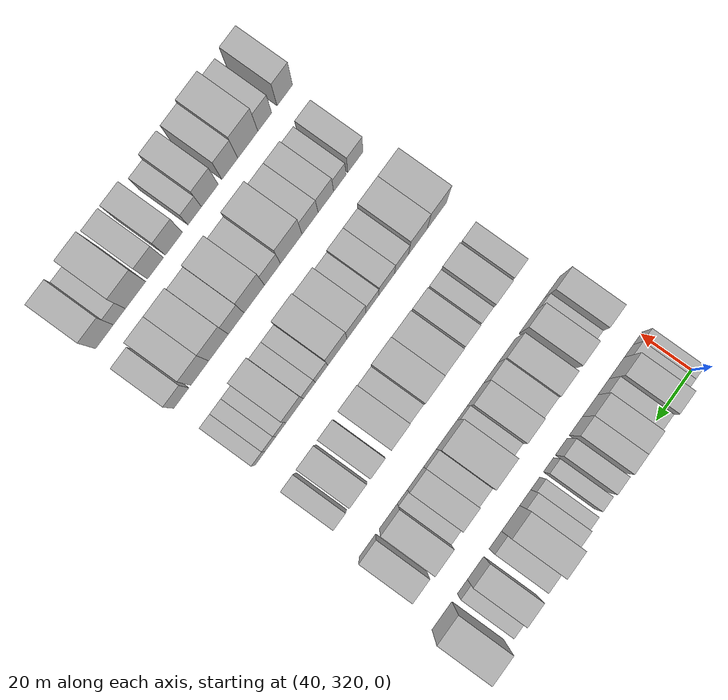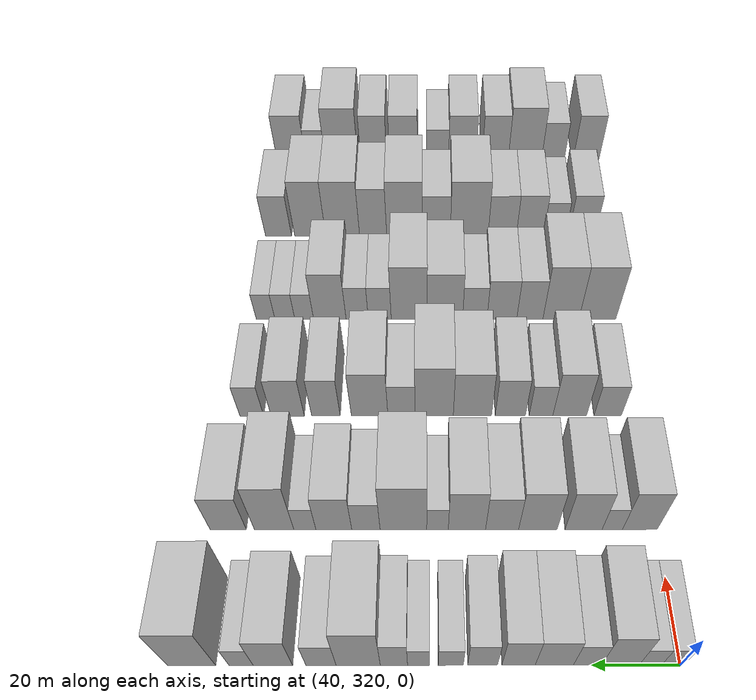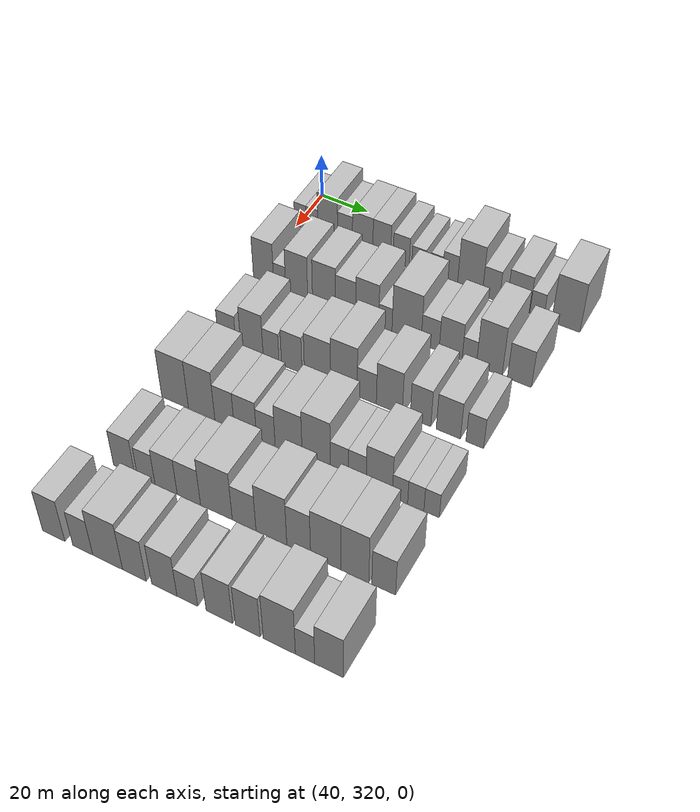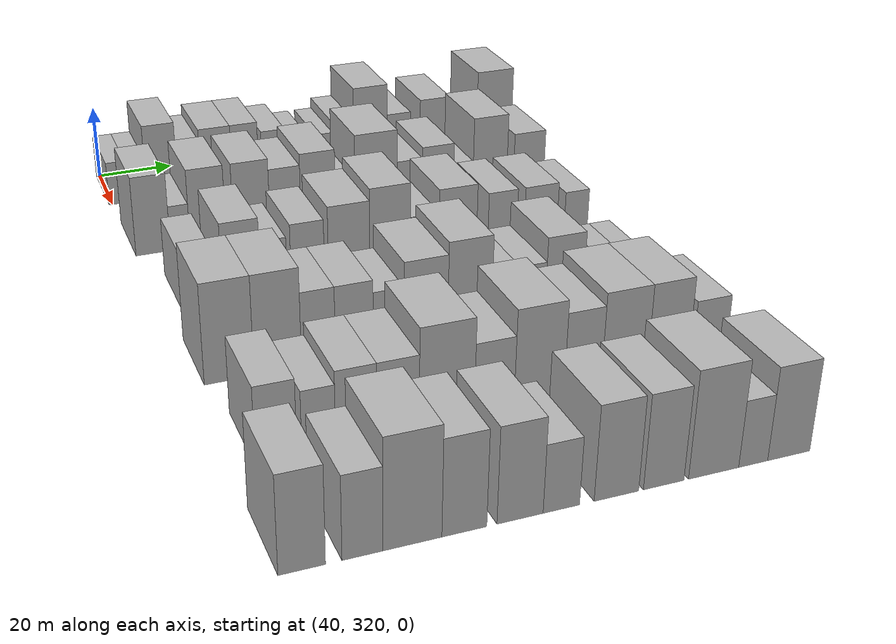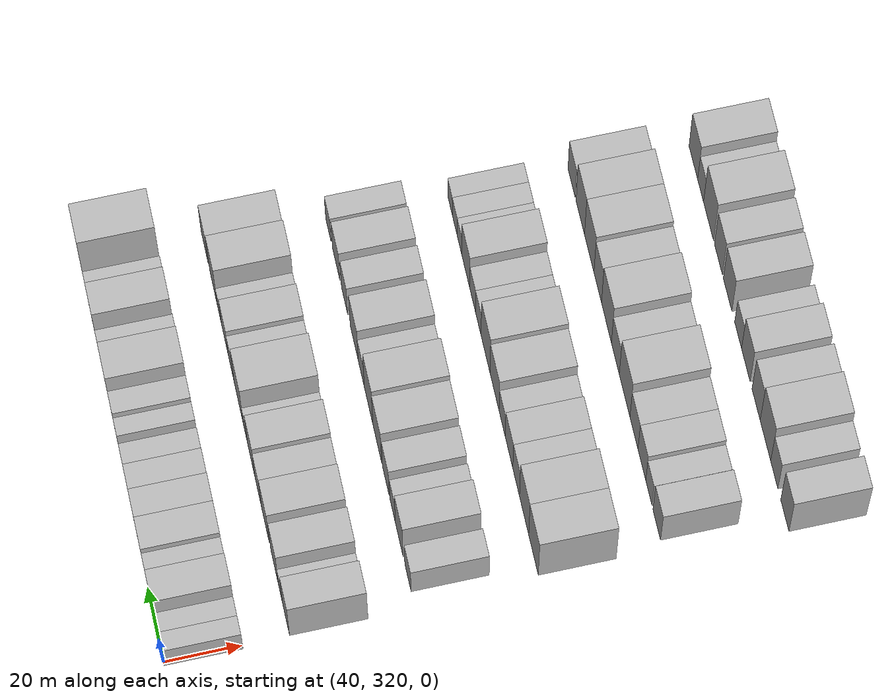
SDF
<sdf version="1.6">
 <world name="default">
  <model name="building_100">
   <static>1</static>
   <pose>50.0000 321.6509 0 0.000000 0.000000 0.000000</pose>
   <link name="link">
    <pose>0 0 6.00 0 0 0</pose>
    <collision name="collision"><geometry><box><size>20.0000 5.0294 12.0000</size></box></geometry></collision>
    <visual name="visual">
     <cast_shadows>0</cast_shadows>
     <geometry><box><size>20.0000 5.0294 12.0000</size></box></geometry>
     <material>
      <script>
       <uri>model://HANNAS_wall/materials/scripts</uri>
       <uri>model://HANNAS_wall/materials/textures</uri>
       <name>vrc/HANNAS_wall</name>
      </script>
     </material>
    </visual>
   </link>
  </model>
  <model name="building_101">
   <static>1</static>
   <pose>50.0000 326.7118 0 0.000000 0.000000 0.000000</pose>
   <link name="link">
    <pose>0 0 6.00 0 0 0</pose>
    <collision name="collision"><geometry><box><size>20.0000 5.0926 12.0000</size></box></geometry></collision>
    <visual name="visual">
     <cast_shadows>0</cast_shadows>
     <geometry><box><size>20.0000 5.0926 12.0000</size></box></geometry>
     <material>
      <script>
       <uri>model://HANNAS_wall/materials/scripts</uri>
       <uri>model://HANNAS_wall/materials/textures</uri>
       <name>vrc/HANNAS_wall</name>
      </script>
     </material>
    </visual>
   </link>
  </model>
  <model name="building_102">
   <static>1</static>
   <pose>50.0000 333.5266 0 0.000000 0.000000 0.000000</pose>
   <link name="link">
    <pose>0 0 10.50 0 0 0</pose>
    <collision name="collision"><geometry><box><size>20.0000 8.5370 21.0000</size></box></geometry></collision>
    <visual name="visual">
     <cast_shadows>0</cast_shadows>
     <geometry><box><size>20.0000 8.5370 21.0000</size></box></geometry>
     <material>
      <script>
       <uri>model://HANNAS_wall/materials/scripts</uri>
       <uri>model://HANNAS_wall/materials/textures</uri>
       <name>vrc/HANNAS_wall</name>
      </script>
     </material>
    </visual>
   </link>
  </model>
  <model name="building_103">
   <static>1</static>
   <pose>50.0000 340.9712 0 0.000000 0.000000 0.000000</pose>
   <link name="link">
    <pose>0 0 7.50 0 0 0</pose>
    <collision name="collision"><geometry><box><size>20.0000 6.3523 15.0000</size></box></geometry></collision>
    <visual name="visual">
     <cast_shadows>0</cast_shadows>
     <geometry><box><size>20.0000 6.3523 15.0000</size></box></geometry>
     <material>
      <script>
       <uri>model://HANNAS_wall/materials/scripts</uri>
       <uri>model://HANNAS_wall/materials/textures</uri>
       <name>vrc/HANNAS_wall</name>
      </script>
     </material>
    </visual>
   </link>
  </model>
  <model name="building_104">
   <static>1</static>
   <pose>50.0000 348.4773 0 0.000000 0.000000 0.000000</pose>
   <link name="link">
    <pose>0 0 9.00 0 0 0</pose>
    <collision name="collision"><geometry><box><size>20.0000 8.6597 18.0000</size></box></geometry></collision>
    <visual name="visual">
     <cast_shadows>0</cast_shadows>
     <geometry><box><size>20.0000 8.6597 18.0000</size></box></geometry>
     <material>
      <script>
       <uri>model://HANNAS_wall/materials/scripts</uri>
       <uri>model://HANNAS_wall/materials/textures</uri>
       <name>vrc/HANNAS_wall</name>
      </script>
     </material>
    </visual>
   </link>
  </model>
  <model name="building_105">
   <static>1</static>
   <pose>50.0000 356.5731 0 0.000000 0.000000 0.000000</pose>
   <link name="link">
    <pose>0 0 9.00 0 0 0</pose>
    <collision name="collision"><geometry><box><size>20.0000 7.5318 18.0000</size></box></geometry></collision>
    <visual name="visual">
     <cast_shadows>0</cast_shadows>
     <geometry><box><size>20.0000 7.5318 18.0000</size></box></geometry>
     <material>
      <script>
       <uri>model://HANNAS_wall/materials/scripts</uri>
       <uri>model://HANNAS_wall/materials/textures</uri>
       <name>vrc/HANNAS_wall</name>
      </script>
     </material>
    </visual>
   </link>
  </model>
  <model name="building_106">
   <static>1</static>
   <pose>50.0000 364.7075 0 0.000000 0.000000 0.000000</pose>
   <link name="link">
    <pose>0 0 7.50 0 0 0</pose>
    <collision name="collision"><geometry><box><size>20.0000 6.7371 15.0000</size></box></geometry></collision>
    <visual name="visual">
     <cast_shadows>0</cast_shadows>
     <geometry><box><size>20.0000 6.7371 15.0000</size></box></geometry>
     <material>
      <script>
       <uri>model://HANNAS_wall/materials/scripts</uri>
       <uri>model://HANNAS_wall/materials/textures</uri>
       <name>vrc/HANNAS_wall</name>
      </script>
     </material>
    </visual>
   </link>
  </model>
  <model name="building_107">
   <static>1</static>
   <pose>50.0000 371.9053 0 0.000000 0.000000 0.000000</pose>
   <link name="link">
    <pose>0 0 6.00 0 0 0</pose>
    <collision name="collision"><geometry><box><size>20.0000 5.6584 12.0000</size></box></geometry></collision>
    <visual name="visual">
     <cast_shadows>0</cast_shadows>
     <geometry><box><size>20.0000 5.6584 12.0000</size></box></geometry>
     <material>
      <script>
       <uri>model://HANNAS_wall/materials/scripts</uri>
       <uri>model://HANNAS_wall/materials/textures</uri>
       <name>vrc/HANNAS_wall</name>
      </script>
     </material>
    </visual>
   </link>
  </model>
  <model name="building_108">
   <static>1</static>
   <pose>50.0000 379.2120 0 0.000000 0.000000 0.000000</pose>
   <link name="link">
    <pose>0 0 6.00 0 0 0</pose>
    <collision name="collision"><geometry><box><size>20.0000 4.9550 12.0000</size></box></geometry></collision>
    <visual name="visual">
     <cast_shadows>0</cast_shadows>
     <geometry><box><size>20.0000 4.9550 12.0000</size></box></geometry>
     <material>
      <script>
       <uri>model://HANNAS_wall/materials/scripts</uri>
       <uri>model://HANNAS_wall/materials/textures</uri>
       <name>vrc/HANNAS_wall</name>
      </script>
     </material>
    </visual>
   </link>
  </model>
  <model name="building_109">
   <static>1</static>
   <pose>50.0000 384.7662 0 0.000000 0.000000 0.000000</pose>
   <link name="link">
    <pose>0 0 7.50 0 0 0</pose>
    <collision name="collision"><geometry><box><size>20.0000 6.1534 15.0000</size></box></geometry></collision>
    <visual name="visual">
     <cast_shadows>0</cast_shadows>
     <geometry><box><size>20.0000 6.1534 15.0000</size></box></geometry>
     <material>
      <script>
       <uri>model://HANNAS_wall/materials/scripts</uri>
       <uri>model://HANNAS_wall/materials/textures</uri>
       <name>vrc/HANNAS_wall</name>
      </script>
     </material>
    </visual>
   </link>
  </model>
  <model name="building_110">
   <static>1</static>
   <pose>50.0000 392.8514 0 0.000000 0.000000 0.000000</pose>
   <link name="link">
    <pose>0 0 12.00 0 0 0</pose>
    <collision name="collision"><geometry><box><size>20.0000 10.0171 24.0000</size></box></geometry></collision>
    <visual name="visual">
     <cast_shadows>0</cast_shadows>
     <geometry><box><size>20.0000 10.0171 24.0000</size></box></geometry>
     <material>
      <script>
       <uri>model://HANNAS_wall/materials/scripts</uri>
       <uri>model://HANNAS_wall/materials/textures</uri>
       <name>vrc/HANNAS_wall</name>
      </script>
     </material>
    </visual>
   </link>
  </model>
  <model name="building_111">
   <static>1</static>
   <pose>50.0000 401.2700 0 0.000000 0.000000 0.000000</pose>
   <link name="link">
    <pose>0 0 7.50 0 0 0</pose>
    <collision name="collision"><geometry><box><size>20.0000 6.8203 15.0000</size></box></geometry></collision>
    <visual name="visual">
     <cast_shadows>0</cast_shadows>
     <geometry><box><size>20.0000 6.8203 15.0000</size></box></geometry>
     <material>
      <script>
       <uri>model://HANNAS_wall/materials/scripts</uri>
       <uri>model://HANNAS_wall/materials/textures</uri>
       <name>vrc/HANNAS_wall</name>
      </script>
     </material>
    </visual>
   </link>
  </model>
  <model name="building_112">
   <static>1</static>
   <pose>50.0000 412.1495 0 0.000000 0.000000 0.000000</pose>
   <link name="link">
    <pose>0 0 9.00 0 0 0</pose>
    <collision name="collision"><geometry><box><size>20.0000 8.9387 18.0000</size></box></geometry></collision>
    <visual name="visual">
     <cast_shadows>0</cast_shadows>
     <geometry><box><size>20.0000 8.9387 18.0000</size></box></geometry>
     <material>
      <script>
       <uri>model://HANNAS_wall/materials/scripts</uri>
       <uri>model://HANNAS_wall/materials/textures</uri>
       <name>vrc/HANNAS_wall</name>
      </script>
     </material>
    </visual>
   </link>
  </model>
  <model name="building_113">
   <static>1</static>
   <pose>50.0000 419.3570 0 0.000000 0.000000 0.000000</pose>
   <link name="link">
    <pose>0 0 6.00 0 0 0</pose>
    <collision name="collision"><geometry><box><size>20.0000 5.4764 12.0000</size></box></geometry></collision>
    <visual name="visual">
     <cast_shadows>0</cast_shadows>
     <geometry><box><size>20.0000 5.4764 12.0000</size></box></geometry>
     <material>
      <script>
       <uri>model://HANNAS_wall/materials/scripts</uri>
       <uri>model://HANNAS_wall/materials/textures</uri>
       <name>vrc/HANNAS_wall</name>
      </script>
     </material>
    </visual>
   </link>
  </model>
  <model name="building_114">
   <static>1</static>
   <pose>50.0000 430.5553 0 0.000000 0.000000 0.000000</pose>
   <link name="link">
    <pose>0 0 12.00 0 0 0</pose>
    <collision name="collision"><geometry><box><size>20.0000 10.9201 24.0000</size></box></geometry></collision>
    <visual name="visual">
     <cast_shadows>0</cast_shadows>
     <geometry><box><size>20.0000 10.9201 24.0000</size></box></geometry>
     <material>
      <script>
       <uri>model://HANNAS_wall/materials/scripts</uri>
       <uri>model://HANNAS_wall/materials/textures</uri>
       <name>vrc/HANNAS_wall</name>
      </script>
     </material>
    </visual>
   </link>
  </model>
  <model name="building_228">
   <static>1</static>
   <pose>82.0000 324.3658 0 0.000000 0.000000 0.000000</pose>
   <link name="link">
    <pose>0 0 10.50 0 0 0</pose>
    <collision name="collision"><geometry><box><size>20.0000 8.6534 21.0000</size></box></geometry></collision>
    <visual name="visual">
     <cast_shadows>0</cast_shadows>
     <geometry><box><size>20.0000 8.6534 21.0000</size></box></geometry>
     <material>
      <script>
       <uri>model://HANNAS_wall/materials/scripts</uri>
       <uri>model://HANNAS_wall/materials/textures</uri>
       <name>vrc/HANNAS_wall</name>
      </script>
     </material>
    </visual>
   </link>
  </model>
  <model name="building_229">
   <static>1</static>
   <pose>82.0000 331.2103 0 0.000000 0.000000 0.000000</pose>
   <link name="link">
    <pose>0 0 6.00 0 0 0</pose>
    <collision name="collision"><geometry><box><size>20.0000 5.0355 12.0000</size></box></geometry></collision>
    <visual name="visual">
     <cast_shadows>0</cast_shadows>
     <geometry><box><size>20.0000 5.0355 12.0000</size></box></geometry>
     <material>
      <script>
       <uri>model://HANNAS_wall/materials/scripts</uri>
       <uri>model://HANNAS_wall/materials/textures</uri>
       <name>vrc/HANNAS_wall</name>
      </script>
     </material>
    </visual>
   </link>
  </model>
  <model name="building_230">
   <static>1</static>
   <pose>82.0000 338.3405 0 0.000000 0.000000 0.000000</pose>
   <link name="link">
    <pose>0 0 10.50 0 0 0</pose>
    <collision name="collision"><geometry><box><size>20.0000 9.2250 21.0000</size></box></geometry></collision>
    <visual name="visual">
     <cast_shadows>0</cast_shadows>
     <geometry><box><size>20.0000 9.2250 21.0000</size></box></geometry>
     <material>
      <script>
       <uri>model://HANNAS_wall/materials/scripts</uri>
       <uri>model://HANNAS_wall/materials/textures</uri>
       <name>vrc/HANNAS_wall</name>
      </script>
     </material>
    </visual>
   </link>
  </model>
  <model name="building_231">
   <static>1</static>
   <pose>82.0000 349.7212 0 0.000000 0.000000 0.000000</pose>
   <link name="link">
    <pose>0 0 10.50 0 0 0</pose>
    <collision name="collision"><geometry><box><size>20.0000 9.5364 21.0000</size></box></geometry></collision>
    <visual name="visual">
     <cast_shadows>0</cast_shadows>
     <geometry><box><size>20.0000 9.5364 21.0000</size></box></geometry>
     <material>
      <script>
       <uri>model://HANNAS_wall/materials/scripts</uri>
       <uri>model://HANNAS_wall/materials/textures</uri>
       <name>vrc/HANNAS_wall</name>
      </script>
     </material>
    </visual>
   </link>
  </model>
  <model name="building_232">
   <static>1</static>
   <pose>82.0000 358.5926 0 0.000000 0.000000 0.000000</pose>
   <link name="link">
    <pose>0 0 9.00 0 0 0</pose>
    <collision name="collision"><geometry><box><size>20.0000 8.2064 18.0000</size></box></geometry></collision>
    <visual name="visual">
     <cast_shadows>0</cast_shadows>
     <geometry><box><size>20.0000 8.2064 18.0000</size></box></geometry>
     <material>
      <script>
       <uri>model://HANNAS_wall/materials/scripts</uri>
       <uri>model://HANNAS_wall/materials/textures</uri>
       <name>vrc/HANNAS_wall</name>
      </script>
     </material>
    </visual>
   </link>
  </model>
  <model name="building_233">
   <static>1</static>
   <pose>82.0000 367.3221 0 0.000000 0.000000 0.000000</pose>
   <link name="link">
    <pose>0 0 10.50 0 0 0</pose>
    <collision name="collision"><geometry><box><size>20.0000 9.2527 21.0000</size></box></geometry></collision>
    <visual name="visual">
     <cast_shadows>0</cast_shadows>
     <geometry><box><size>20.0000 9.2527 21.0000</size></box></geometry>
     <material>
      <script>
       <uri>model://HANNAS_wall/materials/scripts</uri>
       <uri>model://HANNAS_wall/materials/textures</uri>
       <name>vrc/HANNAS_wall</name>
      </script>
     </material>
    </visual>
   </link>
  </model>
  <model name="building_234">
   <static>1</static>
   <pose>82.0000 374.6230 0 0.000000 0.000000 0.000000</pose>
   <link name="link">
    <pose>0 0 6.00 0 0 0</pose>
    <collision name="collision"><geometry><box><size>20.0000 5.3490 12.0000</size></box></geometry></collision>
    <visual name="visual">
     <cast_shadows>0</cast_shadows>
     <geometry><box><size>20.0000 5.3490 12.0000</size></box></geometry>
     <material>
      <script>
       <uri>model://HANNAS_wall/materials/scripts</uri>
       <uri>model://HANNAS_wall/materials/textures</uri>
       <name>vrc/HANNAS_wall</name>
      </script>
     </material>
    </visual>
   </link>
  </model>
  <model name="building_235">
   <static>1</static>
   <pose>82.0000 383.0818 0 0.000000 0.000000 0.000000</pose>
   <link name="link">
    <pose>0 0 12.00 0 0 0</pose>
    <collision name="collision"><geometry><box><size>20.0000 11.5686 24.0000</size></box></geometry></collision>
    <visual name="visual">
     <cast_shadows>0</cast_shadows>
     <geometry><box><size>20.0000 11.5686 24.0000</size></box></geometry>
     <material>
      <script>
       <uri>model://HANNAS_wall/materials/scripts</uri>
       <uri>model://HANNAS_wall/materials/textures</uri>
       <name>vrc/HANNAS_wall</name>
      </script>
     </material>
    </visual>
   </link>
  </model>
  <model name="building_236">
   <static>1</static>
   <pose>82.0000 392.3862 0 0.000000 0.000000 0.000000</pose>
   <link name="link">
    <pose>0 0 7.50 0 0 0</pose>
    <collision name="collision"><geometry><box><size>20.0000 7.0402 15.0000</size></box></geometry></collision>
    <visual name="visual">
     <cast_shadows>0</cast_shadows>
     <geometry><box><size>20.0000 7.0402 15.0000</size></box></geometry>
     <material>
      <script>
       <uri>model://HANNAS_wall/materials/scripts</uri>
       <uri>model://HANNAS_wall/materials/textures</uri>
       <name>vrc/HANNAS_wall</name>
      </script>
     </material>
    </visual>
   </link>
  </model>
  <model name="building_237">
   <static>1</static>
   <pose>82.0000 400.3535 0 0.000000 0.000000 0.000000</pose>
   <link name="link">
    <pose>0 0 9.00 0 0 0</pose>
    <collision name="collision"><geometry><box><size>20.0000 8.8945 18.0000</size></box></geometry></collision>
    <visual name="visual">
     <cast_shadows>0</cast_shadows>
     <geometry><box><size>20.0000 8.8945 18.0000</size></box></geometry>
     <material>
      <script>
       <uri>model://HANNAS_wall/materials/scripts</uri>
       <uri>model://HANNAS_wall/materials/textures</uri>
       <name>vrc/HANNAS_wall</name>
      </script>
     </material>
    </visual>
   </link>
  </model>
  <model name="building_238">
   <static>1</static>
   <pose>82.0000 407.5473 0 0.000000 0.000000 0.000000</pose>
   <link name="link">
    <pose>0 0 6.00 0 0 0</pose>
    <collision name="collision"><geometry><box><size>20.0000 5.4932 12.0000</size></box></geometry></collision>
    <visual name="visual">
     <cast_shadows>0</cast_shadows>
     <geometry><box><size>20.0000 5.4932 12.0000</size></box></geometry>
     <material>
      <script>
       <uri>model://HANNAS_wall/materials/scripts</uri>
       <uri>model://HANNAS_wall/materials/textures</uri>
       <name>vrc/HANNAS_wall</name>
      </script>
     </material>
    </visual>
   </link>
  </model>
  <model name="building_239">
   <static>1</static>
   <pose>82.0000 415.1849 0 0.000000 0.000000 0.000000</pose>
   <link name="link">
    <pose>0 0 12.00 0 0 0</pose>
    <collision name="collision"><geometry><box><size>20.0000 9.7820 24.0000</size></box></geometry></collision>
    <visual name="visual">
     <cast_shadows>0</cast_shadows>
     <geometry><box><size>20.0000 9.7820 24.0000</size></box></geometry>
     <material>
      <script>
       <uri>model://HANNAS_wall/materials/scripts</uri>
       <uri>model://HANNAS_wall/materials/textures</uri>
       <name>vrc/HANNAS_wall</name>
      </script>
     </material>
    </visual>
   </link>
  </model>
  <model name="building_240">
   <static>1</static>
   <pose>82.0000 426.5666 0 0.000000 0.000000 0.000000</pose>
   <link name="link">
    <pose>0 0 9.00 0 0 0</pose>
    <collision name="collision"><geometry><box><size>20.0000 8.9813 18.0000</size></box></geometry></collision>
    <visual name="visual">
     <cast_shadows>0</cast_shadows>
     <geometry><box><size>20.0000 8.9813 18.0000</size></box></geometry>
     <material>
      <script>
       <uri>model://HANNAS_wall/materials/scripts</uri>
       <uri>model://HANNAS_wall/materials/textures</uri>
       <name>vrc/HANNAS_wall</name>
      </script>
     </material>
    </visual>
   </link>
  </model>
  <model name="building_351">
   <static>1</static>
   <pose>114.0000 328.3634 0 0.000000 0.000000 0.000000</pose>
   <link name="link">
    <pose>0 0 7.50 0 0 0</pose>
    <collision name="collision"><geometry><box><size>20.0000 7.4168 15.0000</size></box></geometry></collision>
    <visual name="visual">
     <cast_shadows>0</cast_shadows>
     <geometry><box><size>20.0000 7.4168 15.0000</size></box></geometry>
     <material>
      <script>
       <uri>model://HANNAS_wall/materials/scripts</uri>
       <uri>model://HANNAS_wall/materials/textures</uri>
       <name>vrc/HANNAS_wall</name>
      </script>
     </material>
    </visual>
   </link>
  </model>
  <model name="building_352">
   <static>1</static>
   <pose>114.0000 338.6299 0 0.000000 0.000000 0.000000</pose>
   <link name="link">
    <pose>0 0 10.50 0 0 0</pose>
    <collision name="collision"><geometry><box><size>20.0000 9.1162 21.0000</size></box></geometry></collision>
    <visual name="visual">
     <cast_shadows>0</cast_shadows>
     <geometry><box><size>20.0000 9.1162 21.0000</size></box></geometry>
     <material>
      <script>
       <uri>model://HANNAS_wall/materials/scripts</uri>
       <uri>model://HANNAS_wall/materials/textures</uri>
       <name>vrc/HANNAS_wall</name>
      </script>
     </material>
    </visual>
   </link>
  </model>
  <model name="building_353">
   <static>1</static>
   <pose>114.0000 346.3882 0 0.000000 0.000000 0.000000</pose>
   <link name="link">
    <pose>0 0 7.50 0 0 0</pose>
    <collision name="collision"><geometry><box><size>20.0000 6.4004 15.0000</size></box></geometry></collision>
    <visual name="visual">
     <cast_shadows>0</cast_shadows>
     <geometry><box><size>20.0000 6.4004 15.0000</size></box></geometry>
     <material>
      <script>
       <uri>model://HANNAS_wall/materials/scripts</uri>
       <uri>model://HANNAS_wall/materials/textures</uri>
       <name>vrc/HANNAS_wall</name>
      </script>
     </material>
    </visual>
   </link>
  </model>
  <model name="building_354">
   <static>1</static>
   <pose>114.0000 354.6718 0 0.000000 0.000000 0.000000</pose>
   <link name="link">
    <pose>0 0 9.00 0 0 0</pose>
    <collision name="collision"><geometry><box><size>20.0000 8.1669 18.0000</size></box></geometry></collision>
    <visual name="visual">
     <cast_shadows>0</cast_shadows>
     <geometry><box><size>20.0000 8.1669 18.0000</size></box></geometry>
     <material>
      <script>
       <uri>model://HANNAS_wall/materials/scripts</uri>
       <uri>model://HANNAS_wall/materials/textures</uri>
       <name>vrc/HANNAS_wall</name>
      </script>
     </material>
    </visual>
   </link>
  </model>
  <model name="building_355">
   <static>1</static>
   <pose>114.0000 364.9164 0 0.000000 0.000000 0.000000</pose>
   <link name="link">
    <pose>0 0 10.50 0 0 0</pose>
    <collision name="collision"><geometry><box><size>20.0000 10.3223 21.0000</size></box></geometry></collision>
    <visual name="visual">
     <cast_shadows>0</cast_shadows>
     <geometry><box><size>20.0000 10.3223 21.0000</size></box></geometry>
     <material>
      <script>
       <uri>model://HANNAS_wall/materials/scripts</uri>
       <uri>model://HANNAS_wall/materials/textures</uri>
       <name>vrc/HANNAS_wall</name>
      </script>
     </material>
    </visual>
   </link>
  </model>
  <model name="building_356">
   <static>1</static>
   <pose>114.0000 375.2199 0 0.000000 0.000000 0.000000</pose>
   <link name="link">
    <pose>0 0 12.00 0 0 0</pose>
    <collision name="collision"><geometry><box><size>20.0000 10.2846 24.0000</size></box></geometry></collision>
    <visual name="visual">
     <cast_shadows>0</cast_shadows>
     <geometry><box><size>20.0000 10.2846 24.0000</size></box></geometry>
     <material>
      <script>
       <uri>model://HANNAS_wall/materials/scripts</uri>
       <uri>model://HANNAS_wall/materials/textures</uri>
       <name>vrc/HANNAS_wall</name>
      </script>
     </material>
    </visual>
   </link>
  </model>
  <model name="building_357">
   <static>1</static>
   <pose>114.0000 384.0573 0 0.000000 0.000000 0.000000</pose>
   <link name="link">
    <pose>0 0 7.50 0 0 0</pose>
    <collision name="collision"><geometry><box><size>20.0000 7.3901 15.0000</size></box></geometry></collision>
    <visual name="visual">
     <cast_shadows>0</cast_shadows>
     <geometry><box><size>20.0000 7.3901 15.0000</size></box></geometry>
     <material>
      <script>
       <uri>model://HANNAS_wall/materials/scripts</uri>
       <uri>model://HANNAS_wall/materials/textures</uri>
       <name>vrc/HANNAS_wall</name>
      </script>
     </material>
    </visual>
   </link>
  </model>
  <model name="building_358">
   <static>1</static>
   <pose>114.0000 392.6836 0 0.000000 0.000000 0.000000</pose>
   <link name="link">
    <pose>0 0 10.50 0 0 0</pose>
    <collision name="collision"><geometry><box><size>20.0000 9.8625 21.0000</size></box></geometry></collision>
    <visual name="visual">
     <cast_shadows>0</cast_shadows>
     <geometry><box><size>20.0000 9.8625 21.0000</size></box></geometry>
     <material>
      <script>
       <uri>model://HANNAS_wall/materials/scripts</uri>
       <uri>model://HANNAS_wall/materials/textures</uri>
       <name>vrc/HANNAS_wall</name>
      </script>
     </material>
    </visual>
   </link>
  </model>
  <model name="building_359">
   <static>1</static>
   <pose>114.0000 404.4769 0 0.000000 0.000000 0.000000</pose>
   <link name="link">
    <pose>0 0 9.00 0 0 0</pose>
    <collision name="collision"><geometry><box><size>20.0000 7.7241 18.0000</size></box></geometry></collision>
    <visual name="visual">
     <cast_shadows>0</cast_shadows>
     <geometry><box><size>20.0000 7.7241 18.0000</size></box></geometry>
     <material>
      <script>
       <uri>model://HANNAS_wall/materials/scripts</uri>
       <uri>model://HANNAS_wall/materials/textures</uri>
       <name>vrc/HANNAS_wall</name>
      </script>
     </material>
    </visual>
   </link>
  </model>
  <model name="building_360">
   <static>1</static>
   <pose>114.0000 414.8120 0 0.000000 0.000000 0.000000</pose>
   <link name="link">
    <pose>0 0 9.00 0 0 0</pose>
    <collision name="collision"><geometry><box><size>20.0000 8.9459 18.0000</size></box></geometry></collision>
    <visual name="visual">
     <cast_shadows>0</cast_shadows>
     <geometry><box><size>20.0000 8.9459 18.0000</size></box></geometry>
     <material>
      <script>
       <uri>model://HANNAS_wall/materials/scripts</uri>
       <uri>model://HANNAS_wall/materials/textures</uri>
       <name>vrc/HANNAS_wall</name>
      </script>
     </material>
    </visual>
   </link>
  </model>
  <model name="building_361">
   <static>1</static>
   <pose>114.0000 424.5074 0 0.000000 0.000000 0.000000</pose>
   <link name="link">
    <pose>0 0 7.50 0 0 0</pose>
    <collision name="collision"><geometry><box><size>20.0000 6.4450 15.0000</size></box></geometry></collision>
    <visual name="visual">
     <cast_shadows>0</cast_shadows>
     <geometry><box><size>20.0000 6.4450 15.0000</size></box></geometry>
     <material>
      <script>
       <uri>model://HANNAS_wall/materials/scripts</uri>
       <uri>model://HANNAS_wall/materials/textures</uri>
       <name>vrc/HANNAS_wall</name>
      </script>
     </material>
    </visual>
   </link>
  </model>
  <model name="building_465">
   <static>1</static>
   <pose>146.0000 327.3567 0 0.000000 0.000000 0.000000</pose>
   <link name="link">
    <pose>0 0 12.00 0 0 0</pose>
    <collision name="collision"><geometry><box><size>20.0000 10.8014 24.0000</size></box></geometry></collision>
    <visual name="visual">
     <cast_shadows>0</cast_shadows>
     <geometry><box><size>20.0000 10.8014 24.0000</size></box></geometry>
     <material>
      <script>
       <uri>model://HANNAS_wall/materials/scripts</uri>
       <uri>model://HANNAS_wall/materials/textures</uri>
       <name>vrc/HANNAS_wall</name>
      </script>
     </material>
    </visual>
   </link>
  </model>
  <model name="building_466">
   <static>1</static>
   <pose>146.0000 338.0148 0 0.000000 0.000000 0.000000</pose>
   <link name="link">
    <pose>0 0 12.00 0 0 0</pose>
    <collision name="collision"><geometry><box><size>20.0000 10.5149 24.0000</size></box></geometry></collision>
    <visual name="visual">
     <cast_shadows>0</cast_shadows>
     <geometry><box><size>20.0000 10.5149 24.0000</size></box></geometry>
     <material>
      <script>
       <uri>model://HANNAS_wall/materials/scripts</uri>
       <uri>model://HANNAS_wall/materials/textures</uri>
       <name>vrc/HANNAS_wall</name>
      </script>
     </material>
    </visual>
   </link>
  </model>
  <model name="building_467">
   <static>1</static>
   <pose>146.0000 347.0986 0 0.000000 0.000000 0.000000</pose>
   <link name="link">
    <pose>0 0 9.00 0 0 0</pose>
    <collision name="collision"><geometry><box><size>20.0000 7.6526 18.0000</size></box></geometry></collision>
    <visual name="visual">
     <cast_shadows>0</cast_shadows>
     <geometry><box><size>20.0000 7.6526 18.0000</size></box></geometry>
     <material>
      <script>
       <uri>model://HANNAS_wall/materials/scripts</uri>
       <uri>model://HANNAS_wall/materials/textures</uri>
       <name>vrc/HANNAS_wall</name>
      </script>
     </material>
    </visual>
   </link>
  </model>
  <model name="building_468">
   <static>1</static>
   <pose>146.0000 355.2636 0 0.000000 0.000000 0.000000</pose>
   <link name="link">
    <pose>0 0 9.00 0 0 0</pose>
    <collision name="collision"><geometry><box><size>20.0000 8.6773 18.0000</size></box></geometry></collision>
    <visual name="visual">
     <cast_shadows>0</cast_shadows>
     <geometry><box><size>20.0000 8.6773 18.0000</size></box></geometry>
     <material>
      <script>
       <uri>model://HANNAS_wall/materials/scripts</uri>
       <uri>model://HANNAS_wall/materials/textures</uri>
       <name>vrc/HANNAS_wall</name>
      </script>
     </material>
    </visual>
   </link>
  </model>
  <model name="building_469">
   <static>1</static>
   <pose>146.0000 363.1673 0 0.000000 0.000000 0.000000</pose>
   <link name="link">
    <pose>0 0 7.50 0 0 0</pose>
    <collision name="collision"><geometry><box><size>20.0000 7.1301 15.0000</size></box></geometry></collision>
    <visual name="visual">
     <cast_shadows>0</cast_shadows>
     <geometry><box><size>20.0000 7.1301 15.0000</size></box></geometry>
     <material>
      <script>
       <uri>model://HANNAS_wall/materials/scripts</uri>
       <uri>model://HANNAS_wall/materials/textures</uri>
       <name>vrc/HANNAS_wall</name>
      </script>
     </material>
    </visual>
   </link>
  </model>
  <model name="building_470">
   <static>1</static>
   <pose>146.0000 371.8957 0 0.000000 0.000000 0.000000</pose>
   <link name="link">
    <pose>0 0 10.50 0 0 0</pose>
    <collision name="collision"><geometry><box><size>20.0000 10.3267 21.0000</size></box></geometry></collision>
    <visual name="visual">
     <cast_shadows>0</cast_shadows>
     <geometry><box><size>20.0000 10.3267 21.0000</size></box></geometry>
     <material>
      <script>
       <uri>model://HANNAS_wall/materials/scripts</uri>
       <uri>model://HANNAS_wall/materials/textures</uri>
       <name>vrc/HANNAS_wall</name>
      </script>
     </material>
    </visual>
   </link>
  </model>
  <model name="building_471">
   <static>1</static>
   <pose>146.0000 382.3166 0 0.000000 0.000000 0.000000</pose>
   <link name="link">
    <pose>0 0 12.00 0 0 0</pose>
    <collision name="collision"><geometry><box><size>20.0000 10.5152 24.0000</size></box></geometry></collision>
    <visual name="visual">
     <cast_shadows>0</cast_shadows>
     <geometry><box><size>20.0000 10.5152 24.0000</size></box></geometry>
     <material>
      <script>
       <uri>model://HANNAS_wall/materials/scripts</uri>
       <uri>model://HANNAS_wall/materials/textures</uri>
       <name>vrc/HANNAS_wall</name>
      </script>
     </material>
    </visual>
   </link>
  </model>
  <model name="building_472">
   <static>1</static>
   <pose>146.0000 390.9191 0 0.000000 0.000000 0.000000</pose>
   <link name="link">
    <pose>0 0 7.50 0 0 0</pose>
    <collision name="collision"><geometry><box><size>20.0000 6.6898 15.0000</size></box></geometry></collision>
    <visual name="visual">
     <cast_shadows>0</cast_shadows>
     <geometry><box><size>20.0000 6.6898 15.0000</size></box></geometry>
     <material>
      <script>
       <uri>model://HANNAS_wall/materials/scripts</uri>
       <uri>model://HANNAS_wall/materials/textures</uri>
       <name>vrc/HANNAS_wall</name>
      </script>
     </material>
    </visual>
   </link>
  </model>
  <model name="building_473">
   <static>1</static>
   <pose>146.0000 397.5116 0 0.000000 0.000000 0.000000</pose>
   <link name="link">
    <pose>0 0 7.50 0 0 0</pose>
    <collision name="collision"><geometry><box><size>20.0000 6.4951 15.0000</size></box></geometry></collision>
    <visual name="visual">
     <cast_shadows>0</cast_shadows>
     <geometry><box><size>20.0000 6.4951 15.0000</size></box></geometry>
     <material>
      <script>
       <uri>model://HANNAS_wall/materials/scripts</uri>
       <uri>model://HANNAS_wall/materials/textures</uri>
       <name>vrc/HANNAS_wall</name>
      </script>
     </material>
    </visual>
   </link>
  </model>
  <model name="building_474">
   <static>1</static>
   <pose>146.0000 405.5140 0 0.000000 0.000000 0.000000</pose>
   <link name="link">
    <pose>0 0 10.50 0 0 0</pose>
    <collision name="collision"><geometry><box><size>20.0000 9.5097 21.0000</size></box></geometry></collision>
    <visual name="visual">
     <cast_shadows>0</cast_shadows>
     <geometry><box><size>20.0000 9.5097 21.0000</size></box></geometry>
     <material>
      <script>
       <uri>model://HANNAS_wall/materials/scripts</uri>
       <uri>model://HANNAS_wall/materials/textures</uri>
       <name>vrc/HANNAS_wall</name>
      </script>
     </material>
    </visual>
   </link>
  </model>
  <model name="building_475">
   <static>1</static>
   <pose>146.0000 413.0152 0 0.000000 0.000000 0.000000</pose>
   <link name="link">
    <pose>0 0 6.00 0 0 0</pose>
    <collision name="collision"><geometry><box><size>20.0000 5.4927 12.0000</size></box></geometry></collision>
    <visual name="visual">
     <cast_shadows>0</cast_shadows>
     <geometry><box><size>20.0000 5.4927 12.0000</size></box></geometry>
     <material>
      <script>
       <uri>model://HANNAS_wall/materials/scripts</uri>
       <uri>model://HANNAS_wall/materials/textures</uri>
       <name>vrc/HANNAS_wall</name>
      </script>
     </material>
    </visual>
   </link>
  </model>
  <model name="building_476">
   <static>1</static>
   <pose>146.0000 418.6632 0 0.000000 0.000000 0.000000</pose>
   <link name="link">
    <pose>0 0 6.00 0 0 0</pose>
    <collision name="collision"><geometry><box><size>20.0000 5.8032 12.0000</size></box></geometry></collision>
    <visual name="visual">
     <cast_shadows>0</cast_shadows>
     <geometry><box><size>20.0000 5.8032 12.0000</size></box></geometry>
     <material>
      <script>
       <uri>model://HANNAS_wall/materials/scripts</uri>
       <uri>model://HANNAS_wall/materials/textures</uri>
       <name>vrc/HANNAS_wall</name>
      </script>
     </material>
    </visual>
   </link>
  </model>
  <model name="building_477">
   <static>1</static>
   <pose>146.0000 424.2823 0 0.000000 0.000000 0.000000</pose>
   <link name="link">
    <pose>0 0 6.00 0 0 0</pose>
    <collision name="collision"><geometry><box><size>20.0000 5.4350 12.0000</size></box></geometry></collision>
    <visual name="visual">
     <cast_shadows>0</cast_shadows>
     <geometry><box><size>20.0000 5.4350 12.0000</size></box></geometry>
     <material>
      <script>
       <uri>model://HANNAS_wall/materials/scripts</uri>
       <uri>model://HANNAS_wall/materials/textures</uri>
       <name>vrc/HANNAS_wall</name>
      </script>
     </material>
    </visual>
   </link>
  </model>
  <model name="building_584">
   <static>1</static>
   <pose>178.0000 328.4674 0 0.000000 0.000000 0.000000</pose>
   <link name="link">
    <pose>0 0 9.00 0 0 0</pose>
    <collision name="collision"><geometry><box><size>20.0000 8.3271 18.0000</size></box></geometry></collision>
    <visual name="visual">
     <cast_shadows>0</cast_shadows>
     <geometry><box><size>20.0000 8.3271 18.0000</size></box></geometry>
     <material>
      <script>
       <uri>model://HANNAS_wall/materials/scripts</uri>
       <uri>model://HANNAS_wall/materials/textures</uri>
       <name>vrc/HANNAS_wall</name>
      </script>
     </material>
    </visual>
   </link>
  </model>
  <model name="building_585">
   <static>1</static>
   <pose>178.0000 337.0569 0 0.000000 0.000000 0.000000</pose>
   <link name="link">
    <pose>0 0 7.50 0 0 0</pose>
    <collision name="collision"><geometry><box><size>20.0000 6.8518 15.0000</size></box></geometry></collision>
    <visual name="visual">
     <cast_shadows>0</cast_shadows>
     <geometry><box><size>20.0000 6.8518 15.0000</size></box></geometry>
     <material>
      <script>
       <uri>model://HANNAS_wall/materials/scripts</uri>
       <uri>model://HANNAS_wall/materials/textures</uri>
       <name>vrc/HANNAS_wall</name>
      </script>
     </material>
    </visual>
   </link>
  </model>
  <model name="building_586">
   <static>1</static>
   <pose>178.0000 344.7650 0 0.000000 0.000000 0.000000</pose>
   <link name="link">
    <pose>0 0 9.00 0 0 0</pose>
    <collision name="collision"><geometry><box><size>20.0000 8.5645 18.0000</size></box></geometry></collision>
    <visual name="visual">
     <cast_shadows>0</cast_shadows>
     <geometry><box><size>20.0000 8.5645 18.0000</size></box></geometry>
     <material>
      <script>
       <uri>model://HANNAS_wall/materials/scripts</uri>
       <uri>model://HANNAS_wall/materials/textures</uri>
       <name>vrc/HANNAS_wall</name>
      </script>
     </material>
    </visual>
   </link>
  </model>
  <model name="building_587">
   <static>1</static>
   <pose>178.0000 353.4768 0 0.000000 0.000000 0.000000</pose>
   <link name="link">
    <pose>0 0 9.00 0 0 0</pose>
    <collision name="collision"><geometry><box><size>20.0000 8.8592 18.0000</size></box></geometry></collision>
    <visual name="visual">
     <cast_shadows>0</cast_shadows>
     <geometry><box><size>20.0000 8.8592 18.0000</size></box></geometry>
     <material>
      <script>
       <uri>model://HANNAS_wall/materials/scripts</uri>
       <uri>model://HANNAS_wall/materials/textures</uri>
       <name>vrc/HANNAS_wall</name>
      </script>
     </material>
    </visual>
   </link>
  </model>
  <model name="building_588">
   <static>1</static>
   <pose>178.0000 363.8440 0 0.000000 0.000000 0.000000</pose>
   <link name="link">
    <pose>0 0 12.00 0 0 0</pose>
    <collision name="collision"><geometry><box><size>20.0000 11.8752 24.0000</size></box></geometry></collision>
    <visual name="visual">
     <cast_shadows>0</cast_shadows>
     <geometry><box><size>20.0000 11.8752 24.0000</size></box></geometry>
     <material>
      <script>
       <uri>model://HANNAS_wall/materials/scripts</uri>
       <uri>model://HANNAS_wall/materials/textures</uri>
       <name>vrc/HANNAS_wall</name>
      </script>
     </material>
    </visual>
   </link>
  </model>
  <model name="building_589">
   <static>1</static>
   <pose>178.0000 374.1542 0 0.000000 0.000000 0.000000</pose>
   <link name="link">
    <pose>0 0 9.00 0 0 0</pose>
    <collision name="collision"><geometry><box><size>20.0000 8.7452 18.0000</size></box></geometry></collision>
    <visual name="visual">
     <cast_shadows>0</cast_shadows>
     <geometry><box><size>20.0000 8.7452 18.0000</size></box></geometry>
     <material>
      <script>
       <uri>model://HANNAS_wall/materials/scripts</uri>
       <uri>model://HANNAS_wall/materials/textures</uri>
       <name>vrc/HANNAS_wall</name>
      </script>
     </material>
    </visual>
   </link>
  </model>
  <model name="building_590">
   <static>1</static>
   <pose>178.0000 384.1209 0 0.000000 0.000000 0.000000</pose>
   <link name="link">
    <pose>0 0 12.00 0 0 0</pose>
    <collision name="collision"><geometry><box><size>20.0000 11.1883 24.0000</size></box></geometry></collision>
    <visual name="visual">
     <cast_shadows>0</cast_shadows>
     <geometry><box><size>20.0000 11.1883 24.0000</size></box></geometry>
     <material>
      <script>
       <uri>model://HANNAS_wall/materials/scripts</uri>
       <uri>model://HANNAS_wall/materials/textures</uri>
       <name>vrc/HANNAS_wall</name>
      </script>
     </material>
    </visual>
   </link>
  </model>
  <model name="building_591">
   <static>1</static>
   <pose>178.0000 393.9696 0 0.000000 0.000000 0.000000</pose>
   <link name="link">
    <pose>0 0 10.50 0 0 0</pose>
    <collision name="collision"><geometry><box><size>20.0000 8.5091 21.0000</size></box></geometry></collision>
    <visual name="visual">
     <cast_shadows>0</cast_shadows>
     <geometry><box><size>20.0000 8.5091 21.0000</size></box></geometry>
     <material>
      <script>
       <uri>model://HANNAS_wall/materials/scripts</uri>
       <uri>model://HANNAS_wall/materials/textures</uri>
       <name>vrc/HANNAS_wall</name>
      </script>
     </material>
    </visual>
   </link>
  </model>
  <model name="building_592">
   <static>1</static>
   <pose>178.0000 403.5589 0 0.000000 0.000000 0.000000</pose>
   <link name="link">
    <pose>0 0 12.00 0 0 0</pose>
    <collision name="collision"><geometry><box><size>20.0000 10.6695 24.0000</size></box></geometry></collision>
    <visual name="visual">
     <cast_shadows>0</cast_shadows>
     <geometry><box><size>20.0000 10.6695 24.0000</size></box></geometry>
     <material>
      <script>
       <uri>model://HANNAS_wall/materials/scripts</uri>
       <uri>model://HANNAS_wall/materials/textures</uri>
       <name>vrc/HANNAS_wall</name>
      </script>
     </material>
    </visual>
   </link>
  </model>
  <model name="building_593">
   <static>1</static>
   <pose>178.0000 413.7550 0 0.000000 0.000000 0.000000</pose>
   <link name="link">
    <pose>0 0 12.00 0 0 0</pose>
    <collision name="collision"><geometry><box><size>20.0000 9.7227 24.0000</size></box></geometry></collision>
    <visual name="visual">
     <cast_shadows>0</cast_shadows>
     <geometry><box><size>20.0000 9.7227 24.0000</size></box></geometry>
     <material>
      <script>
       <uri>model://HANNAS_wall/materials/scripts</uri>
       <uri>model://HANNAS_wall/materials/textures</uri>
       <name>vrc/HANNAS_wall</name>
      </script>
     </material>
    </visual>
   </link>
  </model>
  <model name="building_594">
   <static>1</static>
   <pose>178.0000 423.6989 0 0.000000 0.000000 0.000000</pose>
   <link name="link">
    <pose>0 0 9.00 0 0 0</pose>
    <collision name="collision"><geometry><box><size>20.0000 8.1650 18.0000</size></box></geometry></collision>
    <visual name="visual">
     <cast_shadows>0</cast_shadows>
     <geometry><box><size>20.0000 8.1650 18.0000</size></box></geometry>
     <material>
      <script>
       <uri>model://HANNAS_wall/materials/scripts</uri>
       <uri>model://HANNAS_wall/materials/textures</uri>
       <name>vrc/HANNAS_wall</name>
      </script>
     </material>
    </visual>
   </link>
  </model>
  <model name="building_713">
   <static>1</static>
   <pose>210.0000 323.8431 0 0.000000 0.000000 0.000000</pose>
   <link name="link">
    <pose>0 0 10.50 0 0 0</pose>
    <collision name="collision"><geometry><box><size>20.0000 8.5888 21.0000</size></box></geometry></collision>
    <visual name="visual">
     <cast_shadows>0</cast_shadows>
     <geometry><box><size>20.0000 8.5888 21.0000</size></box></geometry>
     <material>
      <script>
       <uri>model://HANNAS_wall/materials/scripts</uri>
       <uri>model://HANNAS_wall/materials/textures</uri>
       <name>vrc/HANNAS_wall</name>
      </script>
     </material>
    </visual>
   </link>
  </model>
  <model name="building_714">
   <static>1</static>
   <pose>210.0000 334.9389 0 0.000000 0.000000 0.000000</pose>
   <link name="link">
    <pose>0 0 9.00 0 0 0</pose>
    <collision name="collision"><geometry><box><size>20.0000 7.6028 18.0000</size></box></geometry></collision>
    <visual name="visual">
     <cast_shadows>0</cast_shadows>
     <geometry><box><size>20.0000 7.6028 18.0000</size></box></geometry>
     <material>
      <script>
       <uri>model://HANNAS_wall/materials/scripts</uri>
       <uri>model://HANNAS_wall/materials/textures</uri>
       <name>vrc/HANNAS_wall</name>
      </script>
     </material>
    </visual>
   </link>
  </model>
  <model name="building_715">
   <static>1</static>
   <pose>210.0000 344.3188 0 0.000000 0.000000 0.000000</pose>
   <link name="link">
    <pose>0 0 12.00 0 0 0</pose>
    <collision name="collision"><geometry><box><size>20.0000 11.1570 24.0000</size></box></geometry></collision>
    <visual name="visual">
     <cast_shadows>0</cast_shadows>
     <geometry><box><size>20.0000 11.1570 24.0000</size></box></geometry>
     <material>
      <script>
       <uri>model://HANNAS_wall/materials/scripts</uri>
       <uri>model://HANNAS_wall/materials/textures</uri>
       <name>vrc/HANNAS_wall</name>
      </script>
     </material>
    </visual>
   </link>
  </model>
  <model name="building_716">
   <static>1</static>
   <pose>210.0000 354.2567 0 0.000000 0.000000 0.000000</pose>
   <link name="link">
    <pose>0 0 10.50 0 0 0</pose>
    <collision name="collision"><geometry><box><size>20.0000 8.7189 21.0000</size></box></geometry></collision>
    <visual name="visual">
     <cast_shadows>0</cast_shadows>
     <geometry><box><size>20.0000 8.7189 21.0000</size></box></geometry>
     <material>
      <script>
       <uri>model://HANNAS_wall/materials/scripts</uri>
       <uri>model://HANNAS_wall/materials/textures</uri>
       <name>vrc/HANNAS_wall</name>
      </script>
     </material>
    </visual>
   </link>
  </model>
  <model name="building_717">
   <static>1</static>
   <pose>210.0000 365.2124 0 0.000000 0.000000 0.000000</pose>
   <link name="link">
    <pose>0 0 10.50 0 0 0</pose>
    <collision name="collision"><geometry><box><size>20.0000 9.1925 21.0000</size></box></geometry></collision>
    <visual name="visual">
     <cast_shadows>0</cast_shadows>
     <geometry><box><size>20.0000 9.1925 21.0000</size></box></geometry>
     <material>
      <script>
       <uri>model://HANNAS_wall/materials/scripts</uri>
       <uri>model://HANNAS_wall/materials/textures</uri>
       <name>vrc/HANNAS_wall</name>
      </script>
     </material>
    </visual>
   </link>
  </model>
  <model name="building_718">
   <static>1</static>
   <pose>210.0000 373.5112 0 0.000000 0.000000 0.000000</pose>
   <link name="link">
    <pose>0 0 7.50 0 0 0</pose>
    <collision name="collision"><geometry><box><size>20.0000 7.4050 15.0000</size></box></geometry></collision>
    <visual name="visual">
     <cast_shadows>0</cast_shadows>
     <geometry><box><size>20.0000 7.4050 15.0000</size></box></geometry>
     <material>
      <script>
       <uri>model://HANNAS_wall/materials/scripts</uri>
       <uri>model://HANNAS_wall/materials/textures</uri>
       <name>vrc/HANNAS_wall</name>
      </script>
     </material>
    </visual>
   </link>
  </model>
  <model name="building_719">
   <static>1</static>
   <pose>210.0000 384.8657 0 0.000000 0.000000 0.000000</pose>
   <link name="link">
    <pose>0 0 10.50 0 0 0</pose>
    <collision name="collision"><geometry><box><size>20.0000 9.3040 21.0000</size></box></geometry></collision>
    <visual name="visual">
     <cast_shadows>0</cast_shadows>
     <geometry><box><size>20.0000 9.3040 21.0000</size></box></geometry>
     <material>
      <script>
       <uri>model://HANNAS_wall/materials/scripts</uri>
       <uri>model://HANNAS_wall/materials/textures</uri>
       <name>vrc/HANNAS_wall</name>
      </script>
     </material>
    </visual>
   </link>
  </model>
  <model name="building_720">
   <static>1</static>
   <pose>210.0000 394.8369 0 0.000000 0.000000 0.000000</pose>
   <link name="link">
    <pose>0 0 10.50 0 0 0</pose>
    <collision name="collision"><geometry><box><size>20.0000 8.6384 21.0000</size></box></geometry></collision>
    <visual name="visual">
     <cast_shadows>0</cast_shadows>
     <geometry><box><size>20.0000 8.6384 21.0000</size></box></geometry>
     <material>
      <script>
       <uri>model://HANNAS_wall/materials/scripts</uri>
       <uri>model://HANNAS_wall/materials/textures</uri>
       <name>vrc/HANNAS_wall</name>
      </script>
     </material>
    </visual>
   </link>
  </model>
  <model name="building_721">
   <static>1</static>
   <pose>210.0000 405.6478 0 0.000000 0.000000 0.000000</pose>
   <link name="link">
    <pose>0 0 12.00 0 0 0</pose>
    <collision name="collision"><geometry><box><size>20.0000 10.9833 24.0000</size></box></geometry></collision>
    <visual name="visual">
     <cast_shadows>0</cast_shadows>
     <geometry><box><size>20.0000 10.9833 24.0000</size></box></geometry>
     <material>
      <script>
       <uri>model://HANNAS_wall/materials/scripts</uri>
       <uri>model://HANNAS_wall/materials/textures</uri>
       <name>vrc/HANNAS_wall</name>
      </script>
     </material>
    </visual>
   </link>
  </model>
  <model name="building_722">
   <static>1</static>
   <pose>210.0000 414.3779 0 0.000000 0.000000 0.000000</pose>
   <link name="link">
    <pose>0 0 7.50 0 0 0</pose>
    <collision name="collision"><geometry><box><size>20.0000 6.4770 15.0000</size></box></geometry></collision>
    <visual name="visual">
     <cast_shadows>0</cast_shadows>
     <geometry><box><size>20.0000 6.4770 15.0000</size></box></geometry>
     <material>
      <script>
       <uri>model://HANNAS_wall/materials/scripts</uri>
       <uri>model://HANNAS_wall/materials/textures</uri>
       <name>vrc/HANNAS_wall</name>
      </script>
     </material>
    </visual>
   </link>
  </model>
  <model name="building_723">
   <static>1</static>
   <pose>210.0000 422.3913 0 0.000000 0.000000 0.000000</pose>
   <link name="link">
    <pose>0 0 10.50 0 0 0</pose>
    <collision name="collision"><geometry><box><size>20.0000 9.5497 21.0000</size></box></geometry></collision>
    <visual name="visual">
     <cast_shadows>0</cast_shadows>
     <geometry><box><size>20.0000 9.5497 21.0000</size></box></geometry>
     <material>
      <script>
       <uri>model://HANNAS_wall/materials/scripts</uri>
       <uri>model://HANNAS_wall/materials/textures</uri>
       <name>vrc/HANNAS_wall</name>
      </script>
     </material>
    </visual>
   </link>
  </model>
 </world>
</sdf>
